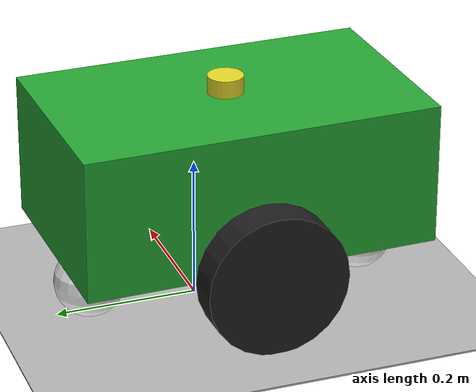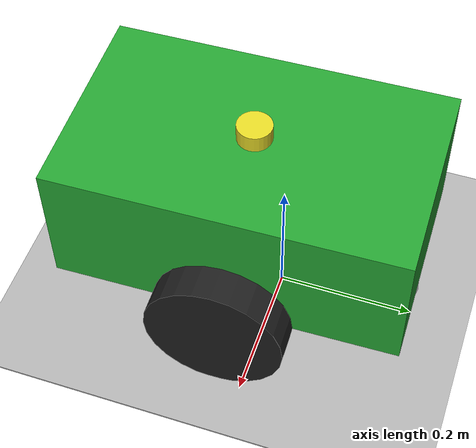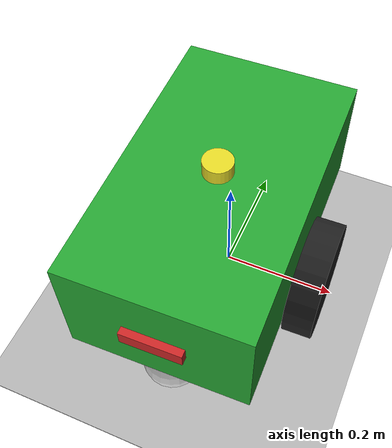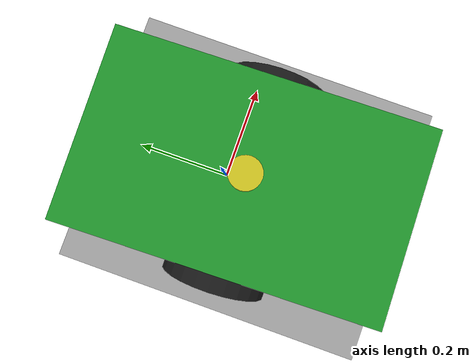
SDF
<sdf version="1.7">
 <world name="default">
  <model name="ground_plane">
   <static>1</static>
   <link name="link">
    <collision name="collision">
     <geometry><plane><normal>0 0 1</normal><size>100 100</size></plane></geometry>
     <surface>
      <contact><collide_bitmask>65535</collide_bitmask></contact>
      <friction><ode><mu>100</mu><mu2>50</mu2></ode></friction>
     </surface>
    </collision>
    <visual name="visual">
     <cast_shadows>0</cast_shadows>
     <geometry><plane><normal>0 0 1</normal><size>100 100</size></plane></geometry>
     <material>
      <script><uri>file://media/materials/scripts/gazebo.material</uri><name>Gazebo/Grey</name></script>
     </material>
    </visual>
   </link>
  </model>
  <model name="/">
   <link name="base_footprint">
    <inertial>
     <pose>0.002427 0 0.002184 0 -0 0</pose>
     <mass>10.3</mass>
     <inertia>
      <ixx>0.110946</ixx>
      <ixy>0</ixy>
      <ixz>5.46117e-05</ixz>
      <iyy>0.25039</iyy>
      <iyz>0</iyz>
      <izz>0.289674</izz>
     </inertia>
    </inertial>
    <collision name="base_footprint_collision">
     <geometry><box><size>0.5 0.3 0.2</size></box></geometry>
    </collision>
    <collision name="base_footprint_fixed_joint_lump__camera_link_collision_1">
     <pose>0.25 0 0 0 -0 0</pose>
     <geometry><box><size>0.025 0.1 0.025</size></box></geometry>
    </collision>
    <collision name="base_footprint_fixed_joint_lump__laser_link_collision_2">
     <pose>0 0 0.1125 0 -0 0</pose>
     <geometry><cylinder><length>0.025</length><radius>0.025</radius></cylinder></geometry>
    </collision>
    <visual name="base_footprint_visual">
     <geometry><box><size>0.5 0.3 0.2</size></box></geometry>
     <material>
      <script><name>Gazebo/Green</name><uri>file://media/materials/scripts/gazebo.material</uri></script>
     </material>
    </visual>
    <visual name="base_footprint_fixed_joint_lump__camera_link_visual_1">
     <pose>0.25 0 0 0 -0 0</pose>
     <geometry><box><size>0.025 0.1 0.025</size></box></geometry>
     <material>
      <script><name>Gazebo/Red</name><uri>file://media/materials/scripts/gazebo.material</uri></script>
     </material>
    </visual>
    <visual name="base_footprint_fixed_joint_lump__laser_link_visual_2">
     <pose>0 0 0.1125 0 -0 0</pose>
     <geometry><cylinder><length>0.025</length><radius>0.025</radius></cylinder></geometry>
     <material>
      <script><name>Gazebo/Yellow</name><uri>file://media/materials/scripts/gazebo.material</uri></script>
     </material>
    </visual>
    <sensor name="camera_link_camera" type="depth">
     <update_rate>20</update_rate>
     <camera>
      <horizontal_fov>1.0472</horizontal_fov>
      <image><width>640</width><height>480</height><format>R8G8B8</format></image>
      <clip><near>0.05</near><far>3</far></clip>
     </camera>
     <plugin name="camera_link_controller" filename="libgazebo_ros_openni_kinect.so">
      <baseline>0.2</baseline>
      <alwaysOn>1</alwaysOn>
      <updateRate>1.0</updateRate>
      <imageTopicName>/camera/rgb/image_raw</imageTopicName>
      <cameraInfoTopicName>/camera/rgb/camera_info</cameraInfoTopicName>
      <depthImageTopicName>/camera/depth/image_raw</depthImageTopicName>
      <depthImageInfoTopicName>/camera/depth/camera_info</depthImageInfoTopicName>
      <pointCloudTopicName>/camera/depth/points</pointCloudTopicName>
      <frameName>camera_link</frameName>
      <pointCloudCutoff>0.5</pointCloudCutoff>
      <pointCloudCutoffMax>3.0</pointCloudCutoffMax>
      <distortionK1>0.00000001</distortionK1>
      <distortionK2>0.00000001</distortionK2>
      <distortionK3>0.00000001</distortionK3>
      <distortionT1>0.00000001</distortionT1>
      <distortionT2>0.00000001</distortionT2>
      <CxPrime>0</CxPrime>
      <Cx>0</Cx>
      <Cy>0</Cy>
      <focalLength>0</focalLength>
      <hackBaseline>0</hackBaseline>
      <robotNamespace>/</robotNamespace>
     </plugin>
     <pose>0.25 0 0 0 -0 0</pose>
    </sensor>
    <sensor name="head_hokuyo_sensor" type="gpu_ray">
     <visualize>0</visualize>
     <update_rate>40</update_rate>
     <ray>
      <scan>
       <horizontal>
        <samples>720</samples>
        <resolution>1</resolution>
        <min_angle>-3.1415</min_angle>
        <max_angle>3.1415</max_angle>
       </horizontal>
       <vertical><samples>1</samples><min_angle>0</min_angle><max_angle>0</max_angle></vertical>
      </scan>
      <range><min>0.1</min><max>10</max><resolution>0.01</resolution></range>
      <noise><type>gaussian</type><mean>0</mean><stddev>0.01</stddev></noise>
     </ray>
     <plugin name="gazebo_ros_head_hokuyo_controller" filename="libgazebo_ros_gpu_laser.so">
      <topicName>scan</topicName>
      <frameName>laser_link</frameName>
      <robotNamespace>/</robotNamespace>
     </plugin>
     <pose>0 0 0.1125 0 -0 0</pose>
    </sensor>
   </link>
   <joint name="caster_wheel_back_base" type="revolute">
    <pose relative_to="base_footprint">-0.2 0 -0.15 0 -0 0</pose>
    <parent>base_footprint</parent>
    <child>caster_wheel_back_link</child>
    <axis>
     <xyz>1 1 1</xyz>
     <limit><lower>-1e+16</lower><upper>1e+16</upper></limit>
     <dynamics><spring_reference>0</spring_reference><spring_stiffness>0</spring_stiffness></dynamics>
    </axis>
   </joint>
   <link name="caster_wheel_back_link">
    <pose relative_to="caster_wheel_back_base">0 0 0 0 -0 0</pose>
    <inertial>
     <mass>0.05</mass>
     <inertia><ixx>5e-05</ixx><ixy>0</ixy><ixz>0</ixz><iyy>5e-05</iyy><iyz>0</iyz><izz>5e-05</izz></inertia>
    </inertial>
    <collision name="caster_wheel_back_link_collision">
     <geometry><sphere><radius>0.05</radius></sphere></geometry>
    </collision>
    <visual name="caster_wheel_back_link_visual">
     <geometry><sphere><radius>0.05</radius></sphere></geometry>
     <material>
      <script><name>Gazebo/White</name><uri>file://media/materials/scripts/gazebo.material</uri></script>
     </material>
    </visual>
   </link>
   <joint name="caster_wheel_front_base" type="revolute">
    <pose relative_to="base_footprint">0.2 0 -0.15 0 -0 0</pose>
    <parent>base_footprint</parent>
    <child>caster_wheel_front_link</child>
    <axis>
     <xyz>1 1 1</xyz>
     <limit><lower>-1e+16</lower><upper>1e+16</upper></limit>
     <dynamics><spring_reference>0</spring_reference><spring_stiffness>0</spring_stiffness></dynamics>
    </axis>
   </joint>
   <link name="caster_wheel_front_link">
    <pose relative_to="caster_wheel_front_base">0 0 0 0 -0 0</pose>
    <inertial>
     <mass>0.05</mass>
     <inertia><ixx>5e-05</ixx><ixy>0</ixy><ixz>0</ixz><iyy>5e-05</iyy><iyz>0</iyz><izz>5e-05</izz></inertia>
    </inertial>
    <collision name="caster_wheel_front_link_collision">
     <geometry><sphere><radius>0.05</radius></sphere></geometry>
    </collision>
    <visual name="caster_wheel_front_link_visual">
     <geometry><sphere><radius>0.05</radius></sphere></geometry>
     <material>
      <script><name>Gazebo/White</name><uri>file://media/materials/scripts/gazebo.material</uri></script>
     </material>
    </visual>
   </link>
   <joint name="wheel_left_base" type="revolute">
    <pose relative_to="base_footprint">0 -0.175 -0.1 0 -0 0</pose>
    <parent>base_footprint</parent>
    <child>wheel_left_link</child>
    <axis>
     <xyz>0 1 0</xyz>
     <limit><lower>-1e+16</lower><upper>1e+16</upper></limit>
     <dynamics><spring_reference>0</spring_reference><spring_stiffness>0</spring_stiffness></dynamics>
    </axis>
   </joint>
   <link name="wheel_left_link">
    <pose relative_to="wheel_left_base">0 0 0 0 -0 0</pose>
    <inertial>
     <mass>0.5</mass>
     <inertia>
      <ixx>0.00135417</ixx>
      <ixy>0</ixy>
      <ixz>0</ixz>
      <iyy>0.00135417</iyy>
      <iyz>0</iyz>
      <izz>0.0025</izz>
     </inertia>
    </inertial>
    <collision name="wheel_left_link_collision">
     <pose>0 0 0 1.57079 1.57079 3.14159</pose>
     <geometry><cylinder><length>0.05</length><radius>0.1</radius></cylinder></geometry>
    </collision>
    <visual name="wheel_left_link_visual">
     <pose>0 0 0 1.57079 1.57079 3.14159</pose>
     <geometry><cylinder><length>0.05</length><radius>0.1</radius></cylinder></geometry>
     <material>
      <script><name>Gazebo/Black</name><uri>file://media/materials/scripts/gazebo.material</uri></script>
     </material>
    </visual>
   </link>
   <joint name="wheel_right_base" type="revolute">
    <pose relative_to="base_footprint">0 0.175 -0.1 0 -0 0</pose>
    <parent>base_footprint</parent>
    <child>wheel_right_link</child>
    <axis>
     <xyz>0 1 0</xyz>
     <limit><lower>-1e+16</lower><upper>1e+16</upper></limit>
     <dynamics><spring_reference>0</spring_reference><spring_stiffness>0</spring_stiffness></dynamics>
    </axis>
   </joint>
   <link name="wheel_right_link">
    <pose relative_to="wheel_right_base">0 0 0 0 -0 0</pose>
    <inertial>
     <mass>0.5</mass>
     <inertia>
      <ixx>0.00135417</ixx>
      <ixy>0</ixy>
      <ixz>0</ixz>
      <iyy>0.00135417</iyy>
      <iyz>0</iyz>
      <izz>0.0025</izz>
     </inertia>
    </inertial>
    <collision name="wheel_right_link_collision">
     <pose>0 0 0 1.57079 1.57079 3.14159</pose>
     <geometry><cylinder><length>0.05</length><radius>0.1</radius></cylinder></geometry>
    </collision>
    <visual name="wheel_right_link_visual">
     <pose>0 0 0 1.57079 1.57079 3.14159</pose>
     <geometry><cylinder><length>0.05</length><radius>0.1</radius></cylinder></geometry>
     <material>
      <script><name>Gazebo/Black</name><uri>file://media/materials/scripts/gazebo.material</uri></script>
     </material>
    </visual>
   </link>
   <static>0</static>
   <plugin name="differential_drive_controller" filename="libgazebo_ros_diff_drive.so">
    <updateRate>10.0</updateRate>
    <leftJoint>wheel_left_base</leftJoint>
    <rightJoint>wheel_right_base</rightJoint>
    <wheelSeparation>0.35</wheelSeparation>
    <wheelDiameter>0.2</wheelDiameter>
    <wheelAcceleration>0.0</wheelAcceleration>
    <wheelTorque>5</wheelTorque>
    <commandTopic>cmd_vel</commandTopic>
    <odometryTopic>odom</odometryTopic>
    <odometryFrame>odom</odometryFrame>
    <robotBaseFrame>base_footprint</robotBaseFrame>
    <odometrySource>1</odometrySource>
    <publishWheelTF>0</publishWheelTF>
    <publishOdom>1</publishOdom>
    <publishWheelJointState>0</publishWheelJointState>
    <legacyMode>1</legacyMode>
    <robotNamespace>/</robotNamespace>
   </plugin>
   <pose>-0.003729 -0.045002 0.2 -0 1.1e-05 -1.5475</pose>
  </model>
  <model name="zemin3">
   <link name="link">
    <inertial>
     <mass>1</mass>
     <inertia>
      <ixx>0.166667</ixx>
      <ixy>0</ixy>
      <ixz>0</ixz>
      <iyy>0.166667</iyy>
      <iyz>0</iyz>
      <izz>0.166667</izz>
     </inertia>
    </inertial>
    <visual name="visual">
     <geometry><box><size>25.1 33.33 0.002784</size></box></geometry>
     <material>
      <script>
       <uri>model://zemin2/materials/scripts/repeated.material</uri>
       <uri>model://zemin2/materials/textures/parkurrr.png</uri>
       <name>RepeatedTexture21</name>
      </script>
      <shader type="pixel"><normal_map>__default__</normal_map></shader>
      <ambient>0.18 0.204 0.212 1</ambient>
      <diffuse>0.7 0.7 0.7 1</diffuse>
      <specular>0.01 0.01 0.01 1</specular>
      <emissive>0 0 0 1</emissive>
     </material>
    </visual>
    <collision name="collision">
     <geometry><box><size>1 1 0.002784</size></box></geometry>
     <surface>
      <friction>
       <ode><mu>1</mu><mu2>1</mu2><fdir1>0 0 0</fdir1><slip1>0</slip1><slip2>0</slip2></ode>
       <torsional>
        <coefficient>1</coefficient>
        <patch_radius>0</patch_radius>
        <surface_radius>0</surface_radius>
        <use_patch_radius>1</use_patch_radius>
        <ode><slip>0</slip></ode>
       </torsional>
      </friction>
      <bounce><restitution_coefficient>0</restitution_coefficient><threshold>1e+06</threshold></bounce>
      <contact>
       <collide_without_contact>0</collide_without_contact>
       <collide_without_contact_bitmask>1</collide_without_contact_bitmask>
       <collide_bitmask>1</collide_bitmask>
       <ode>
        <soft_cfm>0</soft_cfm>
        <soft_erp>0.2</soft_erp>
        <kp>1e+13</kp>
        <kd>1</kd>
        <max_vel>0.01</max_vel>
        <min_depth>0</min_depth>
       </ode>
       <bullet>
        <split_impulse>1</split_impulse>
        <split_impulse_penetration_threshold>-0.01</split_impulse_penetration_threshold>
        <soft_cfm>0</soft_cfm>
        <soft_erp>0.2</soft_erp>
        <kp>1e+13</kp>
        <kd>1</kd>
       </bullet>
      </contact>
     </surface>
    </collision>
   </link>
   <static>1</static>
   <pose>11.274 -9.54487 0 0 -0 0</pose>
  </model>
 </world>
</sdf>
